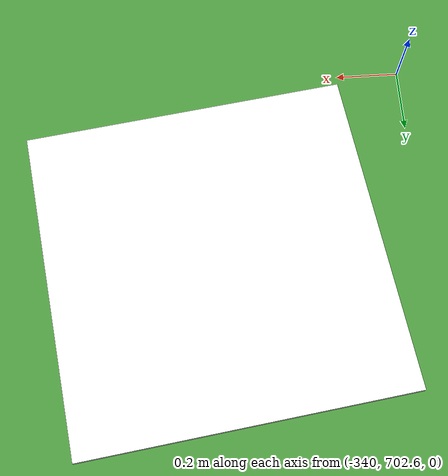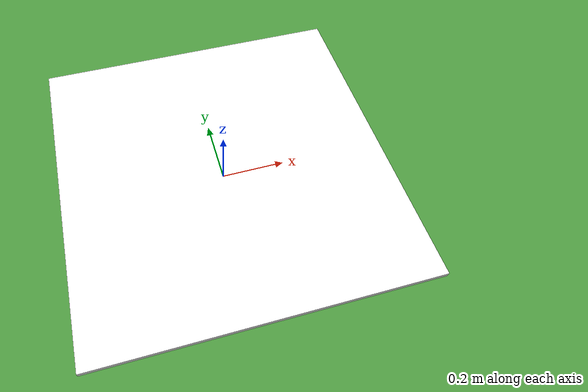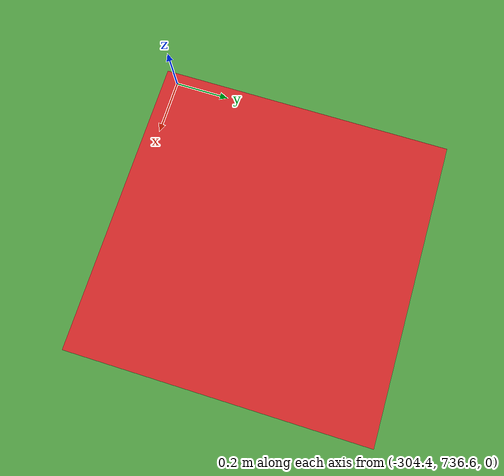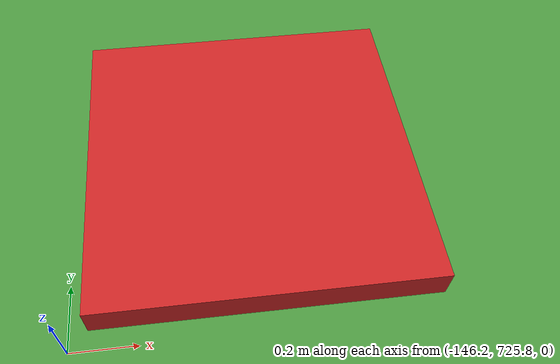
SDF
<sdf version="1.7">
 <world name="default">
  <light name="sun" type="directional">
   <pose>0 0 10 0 -0 0</pose>
   <diffuse>0.8 0.8 0.8 1</diffuse>
   <specular>0.2 0.2 0.2 1</specular>
   <attenuation>
    <range>10000</range>
    <constant>0.9</constant>
    <linear>0.01</linear>
    <quadratic>0.001</quadratic>
   </attenuation>
   <direction>-0.5 0.1 -0.9</direction>
  </light>
  <gravity>0 0 -9.8</gravity>
  <magnetic_field>6e-06 2.3e-05 -4.2e-05</magnetic_field>
  <atmosphere type="adiabatic"/>
  <physics name="default_physics" default="0" type="ode">
   <ode>
    <solver>
     <type>quick</type>
     <iters>100</iters>
     <sor>1</sor>
     <use_dynamic_moi_rescaling>0</use_dynamic_moi_rescaling>
    </solver>
    <constraints>
     <cfm>0</cfm>
     <erp>0.2</erp>
     <contact_max_correcting_vel>0.1</contact_max_correcting_vel>
     <contact_surface_layer>0</contact_surface_layer>
    </constraints>
   </ode>
   <real_time_factor>1</real_time_factor>
   <real_time_update_rate>0</real_time_update_rate>
   <max_step_size>0.001</max_step_size>
  </physics>
  <scene><ambient>0.4 0.4 0.4 1</ambient><background>0.7 0.7 0.7 1</background><shadows>1</shadows></scene>
  <spherical_coordinates>
   <surface_model>EARTH_WGS84</surface_model>
   <latitude_deg>0</latitude_deg>
   <longitude_deg>0</longitude_deg>
   <elevation>0</elevation>
   <heading_deg>0</heading_deg>
  </spherical_coordinates>
  <model name="grass_plane">
   <static>1</static>
   <link name="link">
    <collision name="collision"><geometry><box><size>10000 10000 0.1</size></box></geometry></collision>
    <visual name="visual">
     <cast_shadows>0</cast_shadows>
     <geometry><box><size>10000 10000 0.1</size></box></geometry>
     <material>
      <script>
       <uri>model://grass_plane/materials/scripts</uri>
       <uri>model://grass_plane/materials/textures</uri>
       <name>vrc/grass</name>
      </script>
     </material>
    </visual>
   </link>
   <pose>0.026443 0.053657 0 0 -0 0</pose>
  </model>
  <model name="land_site_1">
   <link name="marker">
    <visual name="visual">
     <geometry><box><size>1 1 0.01</size></box></geometry>
     <material>
      <script>
       <uri>model://land_site_marker/materials/scripts</uri>
       <uri>model://land_site_marker/materials/textures</uri>
       <name>ArucoVisualMarker7/Marker</name>
      </script>
      <ambient>1 1 1 1</ambient>
      <diffuse>1 1 1 1</diffuse>
      <specular>0 0 0 1</specular>
      <emissive>1 1 1 0</emissive>
      <shader type="vertex"><normal_map>__default__</normal_map></shader>
     </material>
    </visual>
    <collision name="collision"><geometry><box><size>1 1 0.01</size></box></geometry></collision>
   </link>
   <link name="marker_pad">
    <pose relative_to="marker">0 0 -0.01 0 -0 0</pose>
    <visual name="visual">
     <geometry><box><size>1 1 0.01</size></box></geometry>
     <material>
      <lighting>1</lighting>
      <script><uri>file://media/materials/scripts/gazebo.material</uri><name>Gazebo/White</name></script>
      <ambient>0.3 0.3 0.3 1</ambient>
      <diffuse>0.7 0.7 0.7 1</diffuse>
      <specular>0.01 0.01 0.01 1</specular>
      <emissive>1 1 1 0</emissive>
      <shader type="vertex"><normal_map>__default__</normal_map></shader>
     </material>
    </visual>
    <collision name="collision"><geometry><box><size>1 1 0.01</size></box></geometry></collision>
   </link>
   <joint name="marker_JOINT_marker_pad" type="revolute">
    <parent>marker</parent>
    <child>marker_pad</child>
    <axis>
     <xyz>0 0 1</xyz>
     <limit><upper>0</upper><lower>0</lower></limit>
     <dynamics><spring_reference>0</spring_reference><spring_stiffness>0</spring_stiffness></dynamics>
    </axis>
   </joint>
   <static>1</static>
   <pose>0 0 0.07 0 -0 0</pose>
  </model>
  <model name="wp_marker_1">
   <link name="link">
    <inertial>
     <mass>1</mass>
     <inertia>
      <ixx>0.166667</ixx>
      <ixy>0</ixy>
      <ixz>0</ixz>
      <iyy>0.166667</iyy>
      <iyz>0</iyz>
      <izz>0.166667</izz>
     </inertia>
    </inertial>
    <visual name="visual">
     <geometry><box><size>1 1 0.1</size></box></geometry>
     <material>
      <script><name>Gazebo/Red</name><uri>file://media/materials/scripts/gazebo.material</uri></script>
      <shader type="pixel"><normal_map>__default__</normal_map></shader>
      <emissive>0 0 0 1</emissive>
     </material>
    </visual>
    <collision name="collision">
     <geometry><box><size>1 1 0.1</size></box></geometry>
     <surface>
      <friction>
       <ode><mu>1</mu><mu2>1</mu2><fdir1>0 0 0</fdir1><slip1>0</slip1><slip2>0</slip2></ode>
       <torsional>
        <coefficient>1</coefficient>
        <patch_radius>0</patch_radius>
        <surface_radius>0</surface_radius>
        <use_patch_radius>1</use_patch_radius>
        <ode><slip>0</slip></ode>
       </torsional>
      </friction>
      <bounce><restitution_coefficient>0</restitution_coefficient><threshold>1e+06</threshold></bounce>
      <contact>
       <collide_without_contact>0</collide_without_contact>
       <collide_without_contact_bitmask>1</collide_without_contact_bitmask>
       <collide_bitmask>1</collide_bitmask>
       <ode>
        <soft_cfm>0</soft_cfm>
        <soft_erp>0.2</soft_erp>
        <kp>1e+13</kp>
        <kd>1</kd>
        <max_vel>0.01</max_vel>
        <min_depth>0</min_depth>
       </ode>
       <bullet>
        <split_impulse>1</split_impulse>
        <split_impulse_penetration_threshold>-0.01</split_impulse_penetration_threshold>
        <soft_cfm>0</soft_cfm>
        <soft_erp>0.2</soft_erp>
        <kp>1e+13</kp>
        <kd>1</kd>
       </bullet>
      </contact>
     </surface>
    </collision>
   </link>
   <static>1</static>
   <pose>76.8816 126.26 0.100348 0 -0 0</pose>
  </model>
  <model name="wp_marker_2">
   <link name="link">
    <inertial>
     <mass>1</mass>
     <inertia>
      <ixx>0.166667</ixx>
      <ixy>0</ixy>
      <ixz>0</ixz>
      <iyy>0.166667</iyy>
      <iyz>0</iyz>
      <izz>0.166667</izz>
     </inertia>
    </inertial>
    <visual name="visual">
     <geometry><box><size>1 1 0.1</size></box></geometry>
     <material>
      <script><name>Gazebo/Red</name><uri>file://media/materials/scripts/gazebo.material</uri></script>
      <shader type="pixel"><normal_map>__default__</normal_map></shader>
      <emissive>0 0 0 1</emissive>
     </material>
    </visual>
    <collision name="collision">
     <geometry><box><size>1 1 0.1</size></box></geometry>
     <surface>
      <friction>
       <ode><mu>1</mu><mu2>1</mu2><fdir1>0 0 0</fdir1><slip1>0</slip1><slip2>0</slip2></ode>
       <torsional>
        <coefficient>1</coefficient>
        <patch_radius>0</patch_radius>
        <surface_radius>0</surface_radius>
        <use_patch_radius>1</use_patch_radius>
        <ode><slip>0</slip></ode>
       </torsional>
      </friction>
      <bounce><restitution_coefficient>0</restitution_coefficient><threshold>1e+06</threshold></bounce>
      <contact>
       <collide_without_contact>0</collide_without_contact>
       <collide_without_contact_bitmask>1</collide_without_contact_bitmask>
       <collide_bitmask>1</collide_bitmask>
       <ode>
        <soft_cfm>0</soft_cfm>
        <soft_erp>0.2</soft_erp>
        <kp>1e+13</kp>
        <kd>1</kd>
        <max_vel>0.01</max_vel>
        <min_depth>0</min_depth>
       </ode>
       <bullet>
        <split_impulse>1</split_impulse>
        <split_impulse_penetration_threshold>-0.01</split_impulse_penetration_threshold>
        <soft_cfm>0</soft_cfm>
        <soft_erp>0.2</soft_erp>
        <kp>1e+13</kp>
        <kd>1</kd>
       </bullet>
      </contact>
     </surface>
    </collision>
   </link>
   <static>1</static>
   <pose>20.494 383.464 0.100348 0 -0 0</pose>
  </model>
  <model name="wp_marker_3">
   <link name="link">
    <inertial>
     <mass>1</mass>
     <inertia>
      <ixx>0.166667</ixx>
      <ixy>0</ixy>
      <ixz>0</ixz>
      <iyy>0.166667</iyy>
      <iyz>0</iyz>
      <izz>0.166667</izz>
     </inertia>
    </inertial>
    <visual name="visual">
     <geometry><box><size>1 1 0.1</size></box></geometry>
     <material>
      <script><name>Gazebo/Red</name><uri>file://media/materials/scripts/gazebo.material</uri></script>
      <shader type="pixel"><normal_map>__default__</normal_map></shader>
      <emissive>0 0 0 1</emissive>
     </material>
    </visual>
    <collision name="collision">
     <geometry><box><size>1 1 0.1</size></box></geometry>
     <surface>
      <friction>
       <ode><mu>1</mu><mu2>1</mu2><fdir1>0 0 0</fdir1><slip1>0</slip1><slip2>0</slip2></ode>
       <torsional>
        <coefficient>1</coefficient>
        <patch_radius>0</patch_radius>
        <surface_radius>0</surface_radius>
        <use_patch_radius>1</use_patch_radius>
        <ode><slip>0</slip></ode>
       </torsional>
      </friction>
      <bounce><restitution_coefficient>0</restitution_coefficient><threshold>1e+06</threshold></bounce>
      <contact>
       <collide_without_contact>0</collide_without_contact>
       <collide_without_contact_bitmask>1</collide_without_contact_bitmask>
       <collide_bitmask>1</collide_bitmask>
       <ode>
        <soft_cfm>0</soft_cfm>
        <soft_erp>0.2</soft_erp>
        <kp>1e+13</kp>
        <kd>1</kd>
        <max_vel>0.01</max_vel>
        <min_depth>0</min_depth>
       </ode>
       <bullet>
        <split_impulse>1</split_impulse>
        <split_impulse_penetration_threshold>-0.01</split_impulse_penetration_threshold>
        <soft_cfm>0</soft_cfm>
        <soft_erp>0.2</soft_erp>
        <kp>1e+13</kp>
        <kd>1</kd>
       </bullet>
      </contact>
     </surface>
    </collision>
   </link>
   <static>1</static>
   <pose>87.3416 582.078 0.100348 0 -0 0</pose>
  </model>
  <model name="wp_marker_4">
   <link name="link">
    <inertial>
     <mass>1</mass>
     <inertia>
      <ixx>0.166667</ixx>
      <ixy>0</ixy>
      <ixz>0</ixz>
      <iyy>0.166667</iyy>
      <iyz>0</iyz>
      <izz>0.166667</izz>
     </inertia>
    </inertial>
    <visual name="visual">
     <geometry><box><size>1 1 0.1</size></box></geometry>
     <material>
      <script><name>Gazebo/Red</name><uri>file://media/materials/scripts/gazebo.material</uri></script>
      <shader type="pixel"><normal_map>__default__</normal_map></shader>
      <emissive>0 0 0 1</emissive>
     </material>
    </visual>
    <collision name="collision">
     <geometry><box><size>1 1 0.1</size></box></geometry>
     <surface>
      <friction>
       <ode><mu>1</mu><mu2>1</mu2><fdir1>0 0 0</fdir1><slip1>0</slip1><slip2>0</slip2></ode>
       <torsional>
        <coefficient>1</coefficient>
        <patch_radius>0</patch_radius>
        <surface_radius>0</surface_radius>
        <use_patch_radius>1</use_patch_radius>
        <ode><slip>0</slip></ode>
       </torsional>
      </friction>
      <bounce><restitution_coefficient>0</restitution_coefficient><threshold>1e+06</threshold></bounce>
      <contact>
       <collide_without_contact>0</collide_without_contact>
       <collide_without_contact_bitmask>1</collide_without_contact_bitmask>
       <collide_bitmask>1</collide_bitmask>
       <ode>
        <soft_cfm>0</soft_cfm>
        <soft_erp>0.2</soft_erp>
        <kp>1e+13</kp>
        <kd>1</kd>
        <max_vel>0.01</max_vel>
        <min_depth>0</min_depth>
       </ode>
       <bullet>
        <split_impulse>1</split_impulse>
        <split_impulse_penetration_threshold>-0.01</split_impulse_penetration_threshold>
        <soft_cfm>0</soft_cfm>
        <soft_erp>0.2</soft_erp>
        <kp>1e+13</kp>
        <kd>1</kd>
       </bullet>
      </contact>
     </surface>
    </collision>
   </link>
   <static>1</static>
   <pose>14.9833 745.262 0.100348 0 -0 0</pose>
  </model>
  <model name="wp_marker_5">
   <link name="link">
    <inertial>
     <mass>1</mass>
     <inertia>
      <ixx>0.166667</ixx>
      <ixy>0</ixy>
      <ixz>0</ixz>
      <iyy>0.166667</iyy>
      <iyz>0</iyz>
      <izz>0.166667</izz>
     </inertia>
    </inertial>
    <visual name="visual">
     <geometry><box><size>1 1 0.1</size></box></geometry>
     <material>
      <script><name>Gazebo/Red</name><uri>file://media/materials/scripts/gazebo.material</uri></script>
      <shader type="pixel"><normal_map>__default__</normal_map></shader>
      <emissive>0 0 0 1</emissive>
     </material>
    </visual>
    <collision name="collision">
     <geometry><box><size>1 1 0.1</size></box></geometry>
     <surface>
      <friction>
       <ode><mu>1</mu><mu2>1</mu2><fdir1>0 0 0</fdir1><slip1>0</slip1><slip2>0</slip2></ode>
       <torsional>
        <coefficient>1</coefficient>
        <patch_radius>0</patch_radius>
        <surface_radius>0</surface_radius>
        <use_patch_radius>1</use_patch_radius>
        <ode><slip>0</slip></ode>
       </torsional>
      </friction>
      <bounce><restitution_coefficient>0</restitution_coefficient><threshold>1e+06</threshold></bounce>
      <contact>
       <collide_without_contact>0</collide_without_contact>
       <collide_without_contact_bitmask>1</collide_without_contact_bitmask>
       <collide_bitmask>1</collide_bitmask>
       <ode>
        <soft_cfm>0</soft_cfm>
        <soft_erp>0.2</soft_erp>
        <kp>1e+13</kp>
        <kd>1</kd>
        <max_vel>0.01</max_vel>
        <min_depth>0</min_depth>
       </ode>
       <bullet>
        <split_impulse>1</split_impulse>
        <split_impulse_penetration_threshold>-0.01</split_impulse_penetration_threshold>
        <soft_cfm>0</soft_cfm>
        <soft_erp>0.2</soft_erp>
        <kp>1e+13</kp>
        <kd>1</kd>
       </bullet>
      </contact>
     </surface>
    </collision>
   </link>
   <static>1</static>
   <pose>-145.635 726.339 0.100348 0 -0 0</pose>
  </model>
  <model name="wp_marker_6">
   <link name="link">
    <inertial>
     <mass>1</mass>
     <inertia>
      <ixx>0.166667</ixx>
      <ixy>0</ixy>
      <ixz>0</ixz>
      <iyy>0.166667</iyy>
      <iyz>0</iyz>
      <izz>0.166667</izz>
     </inertia>
    </inertial>
    <visual name="visual">
     <geometry><box><size>1 1 0.1</size></box></geometry>
     <material>
      <script><name>Gazebo/Red</name><uri>file://media/materials/scripts/gazebo.material</uri></script>
      <shader type="pixel"><normal_map>__default__</normal_map></shader>
      <emissive>0 0 0 1</emissive>
     </material>
    </visual>
    <collision name="collision">
     <geometry><box><size>1 1 0.1</size></box></geometry>
     <surface>
      <friction>
       <ode><mu>1</mu><mu2>1</mu2><fdir1>0 0 0</fdir1><slip1>0</slip1><slip2>0</slip2></ode>
       <torsional>
        <coefficient>1</coefficient>
        <patch_radius>0</patch_radius>
        <surface_radius>0</surface_radius>
        <use_patch_radius>1</use_patch_radius>
        <ode><slip>0</slip></ode>
       </torsional>
      </friction>
      <bounce><restitution_coefficient>0</restitution_coefficient><threshold>1e+06</threshold></bounce>
      <contact>
       <collide_without_contact>0</collide_without_contact>
       <collide_without_contact_bitmask>1</collide_without_contact_bitmask>
       <collide_bitmask>1</collide_bitmask>
       <ode>
        <soft_cfm>0</soft_cfm>
        <soft_erp>0.2</soft_erp>
        <kp>1e+13</kp>
        <kd>1</kd>
        <max_vel>0.01</max_vel>
        <min_depth>0</min_depth>
       </ode>
       <bullet>
        <split_impulse>1</split_impulse>
        <split_impulse_penetration_threshold>-0.01</split_impulse_penetration_threshold>
        <soft_cfm>0</soft_cfm>
        <soft_erp>0.2</soft_erp>
        <kp>1e+13</kp>
        <kd>1</kd>
       </bullet>
      </contact>
     </surface>
    </collision>
   </link>
   <static>1</static>
   <pose>-303.866 737.103 0.100348 0 -0 0</pose>
  </model>
  <model name="land_site_2">
   <link name="marker">
    <visual name="visual">
     <geometry><box><size>1 1 0.01</size></box></geometry>
     <material>
      <script>
       <uri>model://land_site_marker/materials/scripts</uri>
       <uri>model://land_site_marker/materials/textures</uri>
       <name>ArucoVisualMarker7/Marker</name>
      </script>
      <ambient>1 1 1 1</ambient>
      <diffuse>1 1 1 1</diffuse>
      <specular>0 0 0 1</specular>
      <emissive>1 1 1 0</emissive>
      <shader type="vertex"><normal_map>__default__</normal_map></shader>
     </material>
    </visual>
    <collision name="collision"><geometry><box><size>1 1 0.01</size></box></geometry></collision>
    <inertial>
     <inertia><ixx>1</ixx><ixy>0</ixy><ixz>0</ixz><iyy>1</iyy><iyz>0</iyz><izz>1</izz></inertia>
     <mass>1</mass>
    </inertial>
   </link>
   <link name="marker_pad">
    <pose relative_to="marker">0 0 -0.01 0 -0 0</pose>
    <visual name="visual">
     <geometry><box><size>1 1 0.01</size></box></geometry>
     <material>
      <lighting>1</lighting>
      <script><uri>file://media/materials/scripts/gazebo.material</uri><name>Gazebo/White</name></script>
      <ambient>0.3 0.3 0.3 1</ambient>
      <diffuse>0.7 0.7 0.7 1</diffuse>
      <specular>0.01 0.01 0.01 1</specular>
      <emissive>1 1 1 0</emissive>
      <shader type="vertex"><normal_map>__default__</normal_map></shader>
     </material>
    </visual>
    <collision name="collision"><geometry><box><size>1 1 0.01</size></box></geometry></collision>
    <inertial>
     <inertia><ixx>1</ixx><ixy>0</ixy><ixz>0</ixz><iyy>1</iyy><iyz>0</iyz><izz>1</izz></inertia>
     <mass>1</mass>
    </inertial>
   </link>
   <joint name="marker_JOINT_marker_pad" type="revolute">
    <parent>marker</parent>
    <child>marker_pad</child>
    <axis>
     <xyz>0 0 1</xyz>
     <limit><upper>0</upper><lower>0</lower></limit>
     <dynamics><spring_reference>0</spring_reference><spring_stiffness>0</spring_stiffness></dynamics>
    </axis>
   </joint>
   <static>1</static>
   <pose>-339.357 703.232 0.07 0 -0 -3.00514</pose>
  </model>
 </world>
</sdf>
